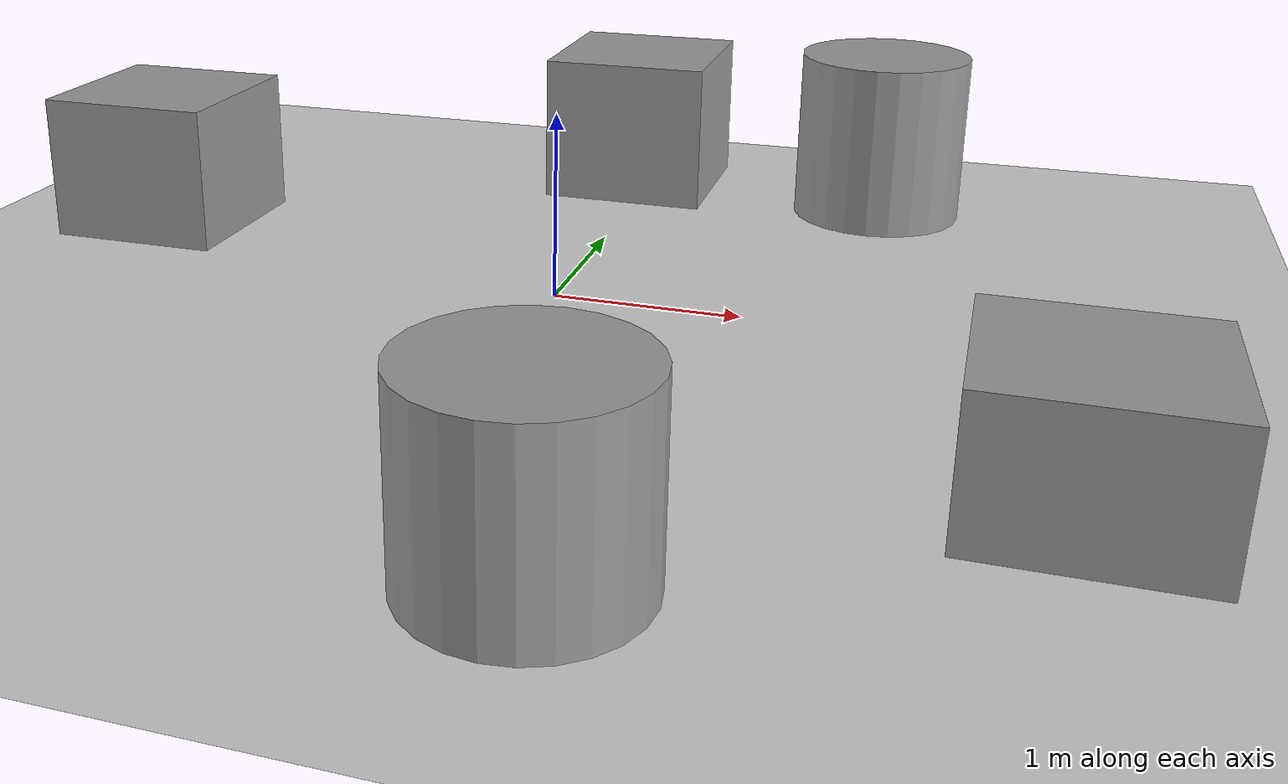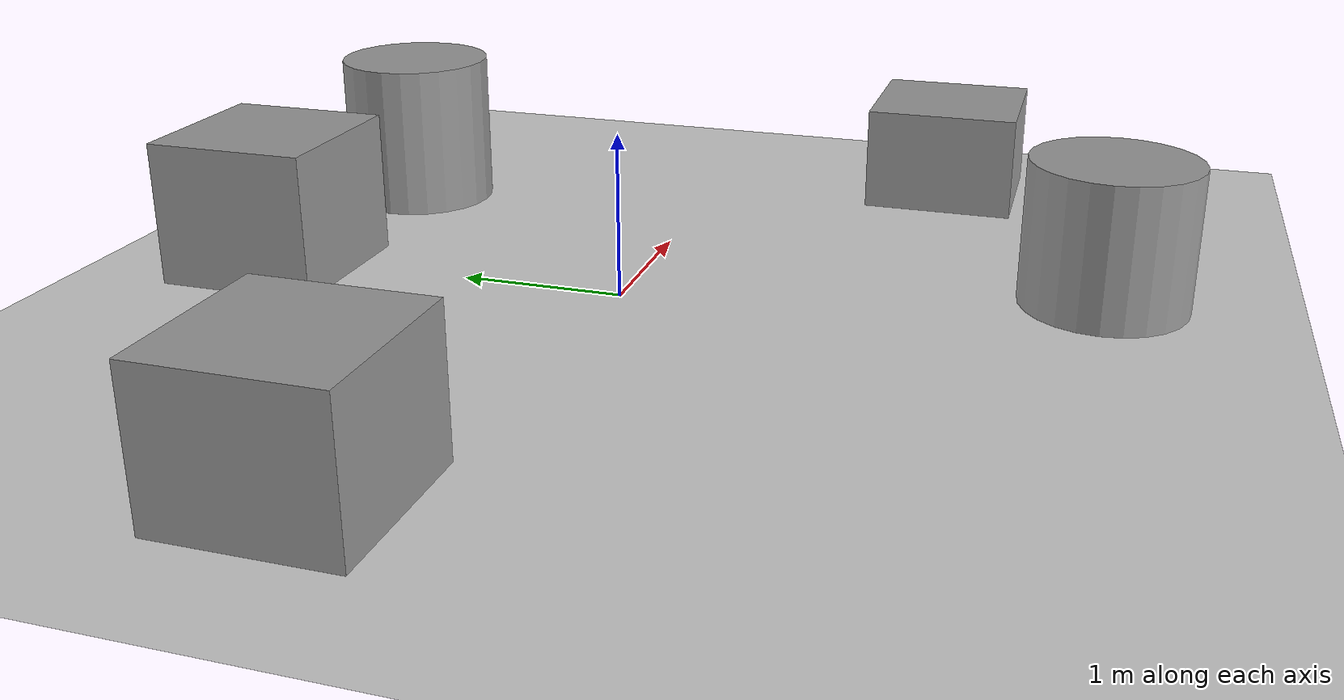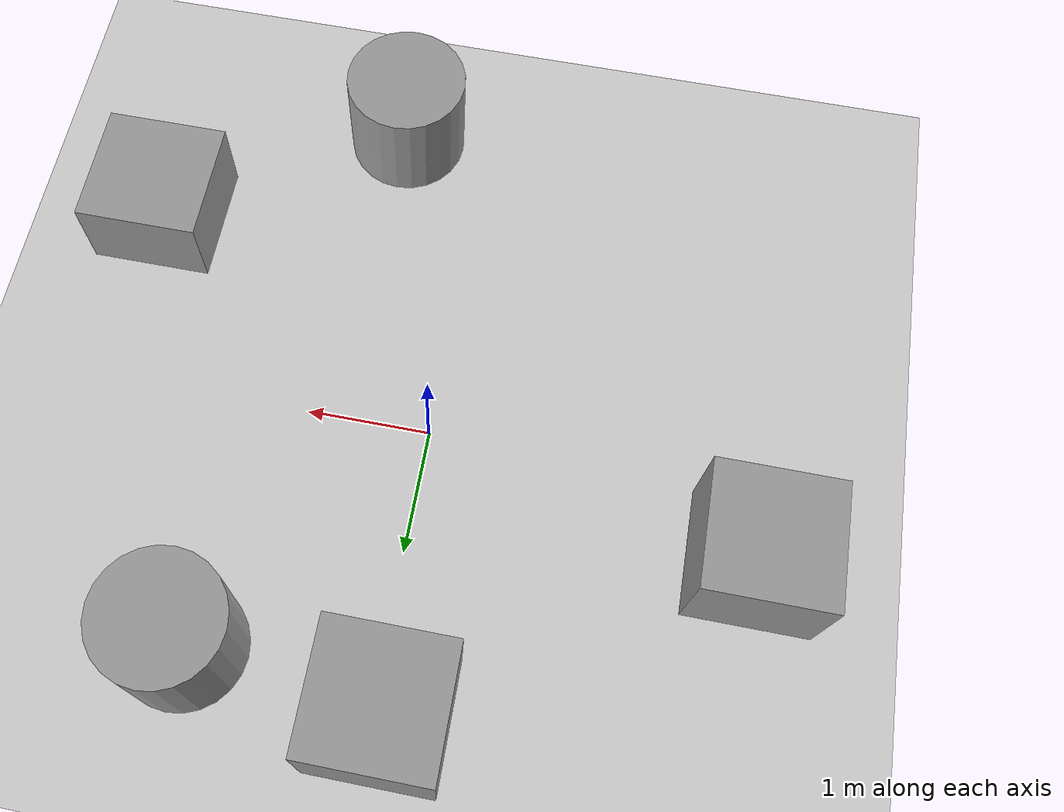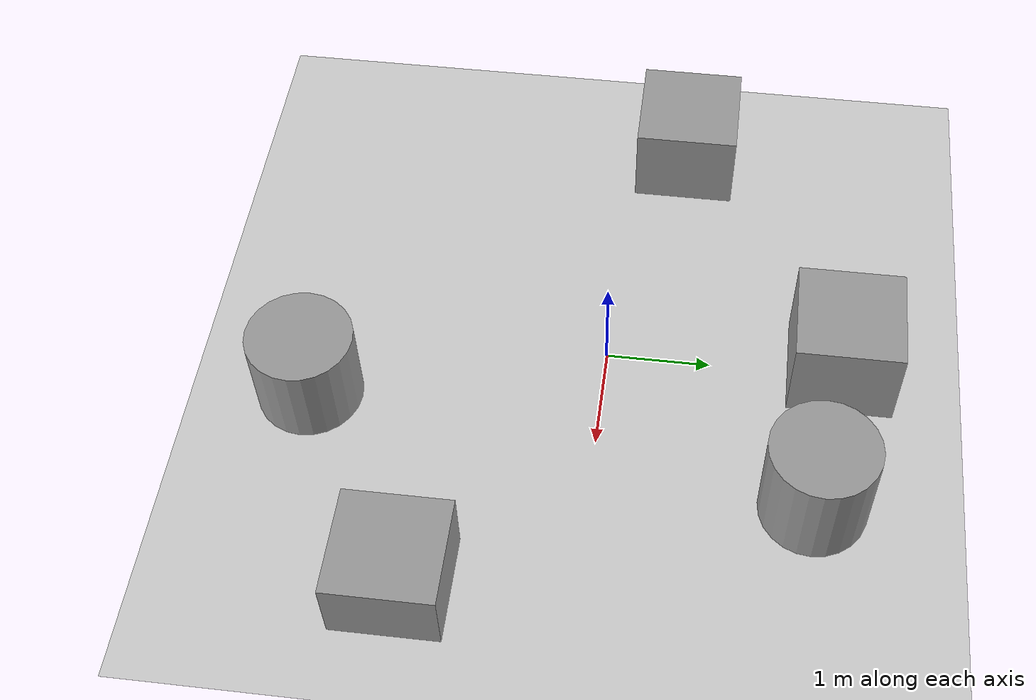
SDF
<sdf version="1.7">
 <world name="default">
  <light name="sun" type="directional">
   <pose>0 0 10 0 -0 0</pose>
   <diffuse>0.8 0.8 0.8 1</diffuse>
   <specular>0.2 0.2 0.2 1</specular>
   <attenuation>
    <range>1000</range>
    <constant>0.9</constant>
    <linear>0.01</linear>
    <quadratic>0.001</quadratic>
   </attenuation>
   <direction>-0.5 0.1 -0.9</direction>
   <spot><inner_angle>0</inner_angle><outer_angle>0</outer_angle><falloff>0</falloff></spot>
  </light>
  <model name="ground_plane">
   <static>1</static>
   <link name="link">
    <collision name="collision">
     <geometry><plane><normal>0 0 1</normal><size>100 100</size></plane></geometry>
     <surface><friction><ode><mu>100</mu><mu2>50</mu2></ode></friction></surface>
    </collision>
    <visual name="visual">
     <cast_shadows>0</cast_shadows>
     <geometry><plane><normal>0 0 1</normal><size>100 100</size></plane></geometry>
     <material>
      <script><uri>file://media/materials/scripts/gazebo.material</uri><name>Gazebo/Grey</name></script>
     </material>
    </visual>
   </link>
  </model>
  <gravity>0 0 -9.8</gravity>
  <magnetic_field>6e-06 2.3e-05 -4.2e-05</magnetic_field>
  <atmosphere type="adiabatic"/>
  <physics type="ode">
   <max_step_size>0.001</max_step_size>
   <real_time_factor>1</real_time_factor>
   <real_time_update_rate>1000</real_time_update_rate>
  </physics>
  <scene><ambient>0.4 0.4 0.4 1</ambient><background>0.7 0.7 0.7 1</background><shadows>1</shadows></scene>
  <audio><device>default</device></audio>
  <spherical_coordinates>
   <surface_model>EARTH_WGS84</surface_model>
   <latitude_deg>0</latitude_deg>
   <longitude_deg>0</longitude_deg>
   <elevation>0</elevation>
   <heading_deg>0</heading_deg>
  </spherical_coordinates>
  <model name="unit_box">
   <pose>-2.65524 0.573731 0.321203 1.7e-05 -0 0</pose>
   <link name="link">
    <inertial>
     <mass>1</mass>
     <inertia>
      <ixx>0.166667</ixx>
      <ixy>0</ixy>
      <ixz>0</ixz>
      <iyy>0.166667</iyy>
      <iyz>0</iyz>
      <izz>0.166667</izz>
     </inertia>
    </inertial>
    <collision name="collision"><geometry><box><size>0.999999 0.999997 1</size></box></geometry></collision>
    <visual name="visual">
     <geometry><box><size>0.999999 0.999997 1</size></box></geometry>
     <material>
      <script><name>Gazebo/Grey</name><uri>file://media/materials/scripts/gazebo.material</uri></script>
     </material>
    </visual>
   </link>
  </model>
  <model name="unit_cylinder">
   <pose>1.4744 2.02451 0.499993 0 -0 2e-06</pose>
   <link name="link">
    <inertial>
     <mass>1</mass>
     <inertia><ixx>0.145833</ixx><ixy>0</ixy><ixz>0</ixz><iyy>0.145833</iyy><iyz>0</iyz><izz>0.125</izz></inertia>
    </inertial>
    <collision name="collision">
     <geometry><cylinder><radius>0.5</radius><length>1</length></cylinder></geometry>
    </collision>
    <visual name="visual">
     <geometry><cylinder><radius>0.5</radius><length>1</length></cylinder></geometry>
     <material>
      <script><name>Gazebo/Grey</name><uri>file://media/materials/scripts/gazebo.material</uri></script>
     </material>
    </visual>
   </link>
  </model>
  <model name="unit_cylinder_0">
   <pose>0.736154 -2.75923 0.376799 0 -0 0</pose>
   <link name="link">
    <inertial>
     <mass>1</mass>
     <inertia><ixx>0.145833</ixx><ixy>0</ixy><ixz>0</ixz><iyy>0.145833</iyy><iyz>0</iyz><izz>0.125</izz></inertia>
    </inertial>
    <collision name="collision">
     <geometry><cylinder><radius>0.500004</radius><length>1</length></cylinder></geometry>
    </collision>
    <visual name="visual">
     <geometry><cylinder><radius>0.500004</radius><length>1</length></cylinder></geometry>
     <material>
      <script><name>Gazebo/Grey</name><uri>file://media/materials/scripts/gazebo.material</uri></script>
     </material>
    </visual>
   </link>
  </model>
  <model name="unit_box_0">
   <pose>2.65877 -1.58951 0.175489 0 -0 1e-06</pose>
   <link name="link">
    <inertial>
     <mass>1</mass>
     <inertia>
      <ixx>0.166667</ixx>
      <ixy>0</ixy>
      <ixz>0</ixz>
      <iyy>0.166667</iyy>
      <iyz>0</iyz>
      <izz>0.166667</izz>
     </inertia>
    </inertial>
    <collision name="collision">
     <geometry><box><size>0.999998 0.999999 0.999999</size></box></geometry>
    </collision>
    <visual name="visual">
     <geometry><box><size>0.999998 0.999999 0.999999</size></box></geometry>
     <material>
      <script><name>Gazebo/Grey</name><uri>file://media/materials/scripts/gazebo.material</uri></script>
     </material>
    </visual>
   </link>
  </model>
  <model name="unit_box_1">
   <pose>-0.100816 2.24645 0.378089 0 -0 0.000214</pose>
   <link name="link">
    <inertial>
     <mass>1</mass>
     <inertia>
      <ixx>0.166667</ixx>
      <ixy>0</ixy>
      <ixz>0</ixz>
      <iyy>0.166667</iyy>
      <iyz>0</iyz>
      <izz>0.166667</izz>
     </inertia>
    </inertial>
    <collision name="collision"><geometry><box><size>1 0.999997 0.999999</size></box></geometry></collision>
    <visual name="visual">
     <geometry><box><size>1 0.999997 0.999999</size></box></geometry>
     <material>
      <script><name>Gazebo/Grey</name><uri>file://media/materials/scripts/gazebo.material</uri></script>
     </material>
    </visual>
   </link>
  </model>
 </world>
</sdf>
